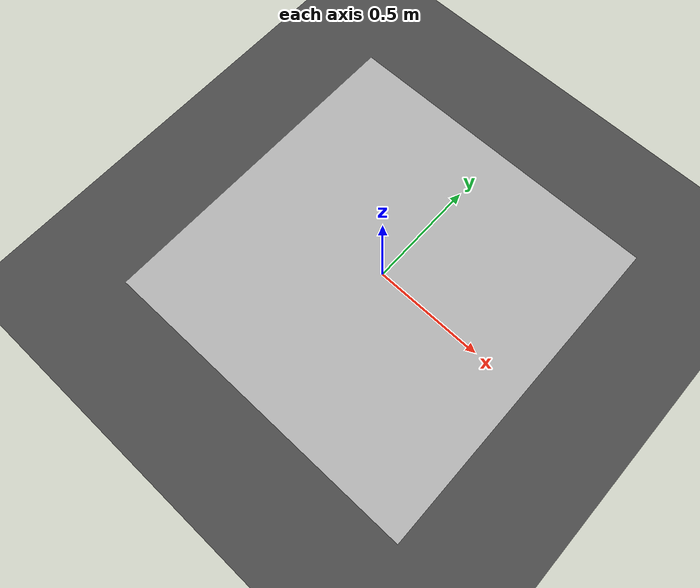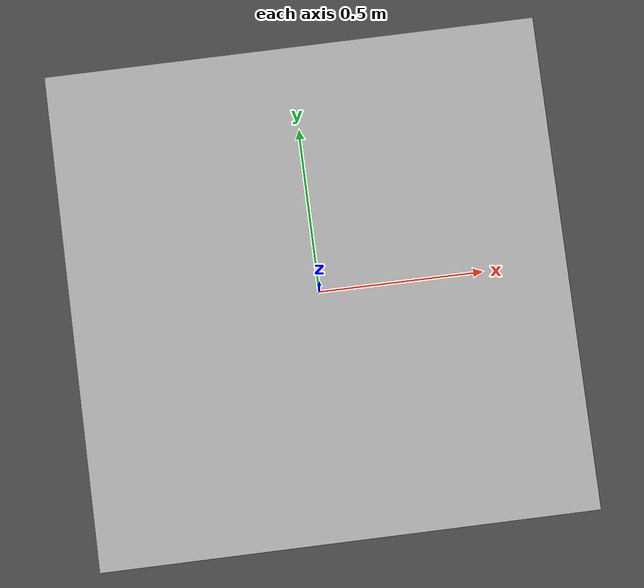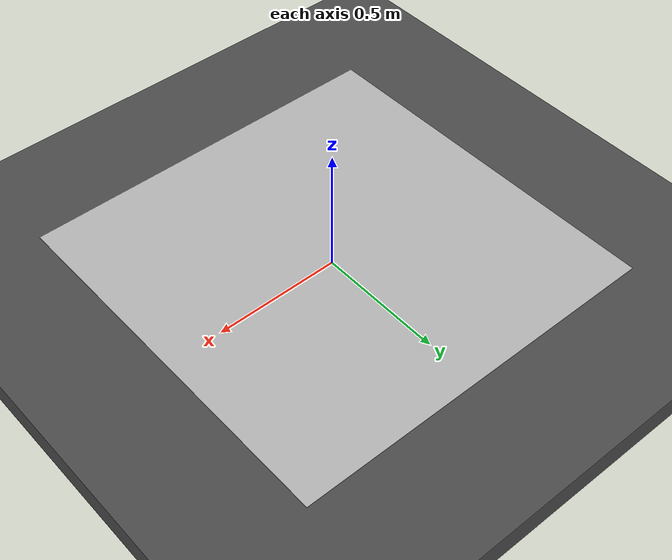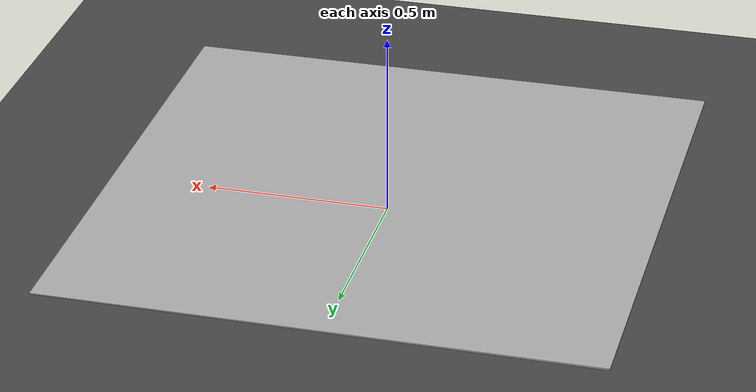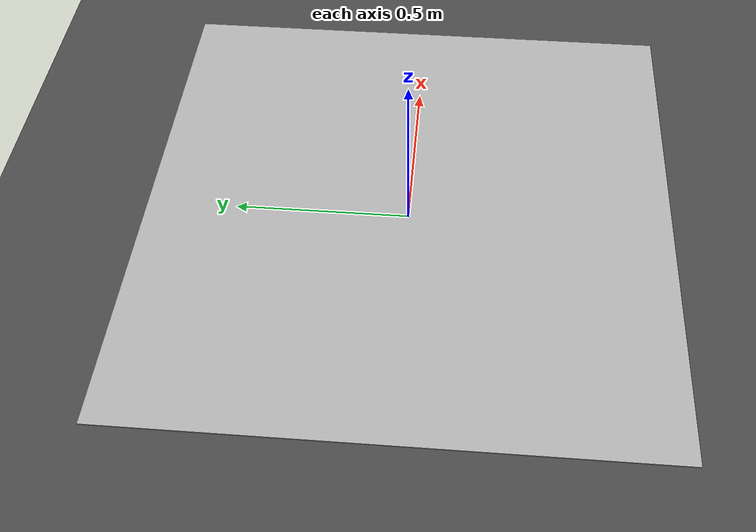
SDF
<sdf version="1.6">
 <world name="default">
  <scene><ambient>0.4 0.4 0.4 1</ambient><background>0.7 0.7 0.7 1</background><shadows>1</shadows></scene>
  <physics name="default_physics" default="0" type="ode">
   <real_time_update_rate>0</real_time_update_rate>
   <max_step_size>0.001</max_step_size>
   <real_time_factor>1</real_time_factor>
  </physics>
  <light name="sun" type="directional">
   <pose>0 0 10 0 -0 0</pose>
   <diffuse>0.8 0.8 0.8 1</diffuse>
   <specular>0.2 0.2 0.2 1</specular>
   <attenuation>
    <range>1000</range>
    <constant>0.9</constant>
    <linear>0.01</linear>
    <quadratic>0.001</quadratic>
   </attenuation>
   <direction>-0.5 0.1 -0.9</direction>
  </light>
  <model name="ground_plane">
   <static>1</static>
   <link name="link">
    <collision name="collision">
     <geometry><plane><normal>0 0 1</normal><size>100 100</size></plane></geometry>
     <surface><friction><ode><mu>100</mu><mu2>50</mu2></ode></friction></surface>
    </collision>
    <visual name="visual">
     <cast_shadows>0</cast_shadows>
     <geometry><plane><normal>0 0 1</normal><size>100 100</size></plane></geometry>
     <material>
      <script><uri>file://media/materials/scripts/gazebo.material</uri><name>Gazebo/Grey</name></script>
     </material>
    </visual>
    <velocity_decay><linear>0</linear><angular>0</angular></velocity_decay>
   </link>
  </model>
  <model name="marker2">
   <static>1</static>
   <link name="marker_link">
    <collision name="collision">
     <geometry><mesh><uri>model://marker/meshes/mbzirc.dae</uri><scale>33 33 33</scale></mesh></geometry>
    </collision>
    <visual name="visual">
     <geometry><mesh><uri>model://marker/meshes/mbzirc.dae</uri><scale>33 33 33</scale></mesh></geometry>
    </visual>
    <velocity_decay><linear>0</linear><angular>0</angular></velocity_decay>
   </link>
   <pose>0 0 0.05 0 -1.57 0</pose>
  </model>
  <spherical_coordinates>
   <surface_model>EARTH_WGS84</surface_model>
   <latitude_deg>0</latitude_deg>
   <longitude_deg>0</longitude_deg>
   <elevation>0</elevation>
   <heading_deg>0</heading_deg>
  </spherical_coordinates>
  <gravity>0 0 -9.8</gravity>
  <magnetic_field>6e-06 2.3e-05 -4.2e-05</magnetic_field>
  <atmosphere type="adiabatic"/>
  <model name="asphalt1_plane">
   <static>1</static>
   <link name="link">
    <collision name="collision"><geometry><box><size>100 100 0.1</size></box></geometry></collision>
    <visual name="visual">
     <cast_shadows>0</cast_shadows>
     <geometry><box><size>100 100 0.1</size></box></geometry>
     <material>
      <script>
       <uri>model://asphalt1/materials/scripts</uri>
       <uri>model://asphalt1/materials/textures</uri>
       <name>vrc/asphalt1</name>
      </script>
     </material>
    </visual>
   </link>
   <pose>0.222657 -0.204052 0 0 -0 0</pose>
  </model>
 </world>
</sdf>
